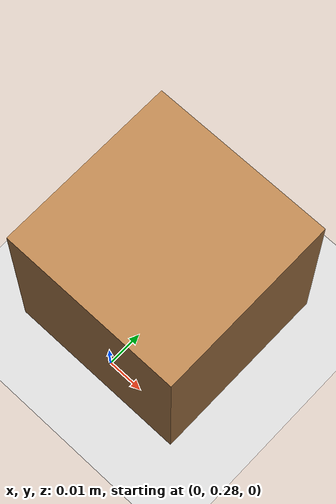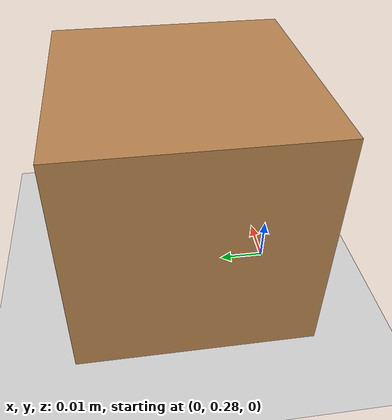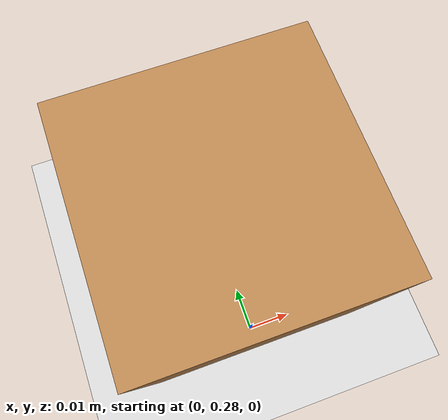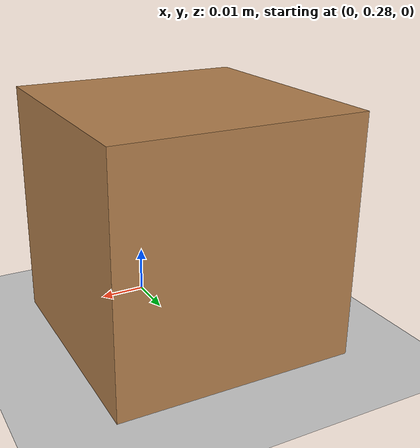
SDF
<sdf version="1.7">
 <world name="default">
  <light name="sun" type="directional">
   <pose>0 0 10 0 -0 0</pose>
   <diffuse>0.8 0.8 0.8 1</diffuse>
   <specular>0.2 0.2 0.2 1</specular>
   <attenuation>
    <range>1000</range>
    <constant>0.9</constant>
    <linear>0.01</linear>
    <quadratic>0.001</quadratic>
   </attenuation>
   <direction>-0.5 0.1 -0.9</direction>
   <spot><inner_angle>0</inner_angle><outer_angle>0</outer_angle><falloff>0</falloff></spot>
  </light>
  <model name="ground_plane">
   <static>1</static>
   <link name="link">
    <collision name="collision">
     <geometry><plane><normal>0 0 1</normal><size>100 100</size></plane></geometry>
     <surface>
      <contact><collide_bitmask>65535</collide_bitmask></contact>
      <friction><ode><mu>100</mu><mu2>50</mu2></ode></friction>
     </surface>
    </collision>
    <visual name="visual">
     <cast_shadows>0</cast_shadows>
     <geometry><plane><normal>0 0 1</normal><size>100 100</size></plane></geometry>
     <material>
      <script><uri>file://media/materials/scripts/gazebo.material</uri><name>Gazebo/Grey</name></script>
     </material>
    </visual>
   </link>
  </model>
  <gravity>0 0 -9.8</gravity>
  <magnetic_field>6e-06 2.3e-05 -4.2e-05</magnetic_field>
  <atmosphere type="adiabatic"/>
  <physics type="ode">
   <max_step_size>0.001</max_step_size>
   <real_time_factor>1</real_time_factor>
   <real_time_update_rate>1000</real_time_update_rate>
  </physics>
  <scene><ambient>0.4 0.4 0.4 1</ambient><background>0.7 0.7 0.7 1</background><shadows>1</shadows></scene>
  <spherical_coordinates>
   <surface_model>EARTH_WGS84</surface_model>
   <latitude_deg>0</latitude_deg>
   <longitude_deg>0</longitude_deg>
   <elevation>0</elevation>
   <heading_deg>0</heading_deg>
  </spherical_coordinates>
  <model name="cube1">
   <pose>0 0.3 0 0 0 0</pose>
   <link name="link">
    <pose>0 0 0.025 0 0 0</pose>
    <inertial>
     <mass>0.0565</mass>
     <inertia>
      <ixx>2.3541666666666672e-05</ixx>
      <ixy>0</ixy>
      <ixz>0</ixz>
      <iyy>2.3541666666666672e-05</iyy>
      <iyz>0</iyz>
      <izz>2.3541666666666672e-05</izz>
     </inertia>
    </inertial>
    <collision name="collision">
     <geometry><box><size>0.05 0.05 0.05</size></box></geometry>
     <surface>
      <contact>
       <poissons_ratio>0.347</poissons_ratio>
       <elastic_modulus>8.8e+09</elastic_modulus>
       <ode><kp>100000</kp><kd>1</kd><max_vel>1.0</max_vel><min_depth>0.001</min_depth></ode>
      </contact>
      <friction>
       <torsional>
        <coefficient>1.0</coefficient>
        <use_patch_radius>0</use_patch_radius>
        <surface_radius>0.05</surface_radius>
       </torsional>
      </friction>
     </surface>
    </collision>
    <visual name="visual">
     <geometry><box><size>0.05 0.05 0.05</size></box></geometry>
     <material>
      <script><uri>file://media/materials/scripts/gazebo.material</uri><name>Gazebo/Wood</name></script>
     </material>
    </visual>
   </link>
  </model>
 </world>
</sdf>
